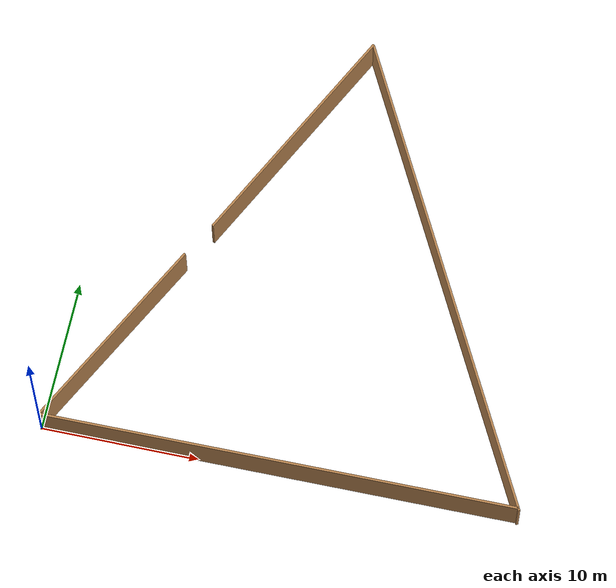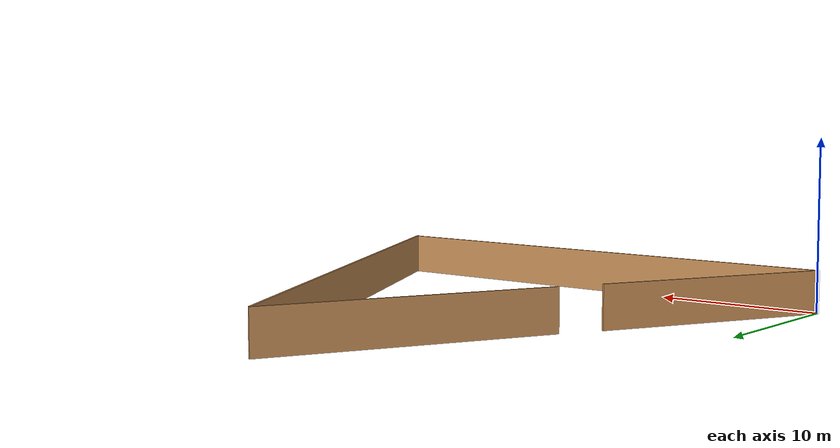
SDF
<?xml version='1.0'?>
<sdf version='1.5'>
  <model name='tr_layout_1'>
    <pose>15.0406 14.7092 0 0 -0 0</pose>
    <link name='Wall_0'>
      <collision name='Wall_0_Collision'>
        <geometry>
          <box>
            <size>30.15 0.15 2.5</size>
          </box>
        </geometry>
        <pose>0 0 1.25 0 -0 0</pose>
      </collision>
      <visual name='Wall_0_Visual'>
        <pose>0 0 1.25 0 -0 0</pose>
        <geometry>
          <box>
            <size>30.15 0.15 2.5</size>
          </box>
        </geometry>
        <material>
          <script>
            <uri>file://media/materials/scripts/gazebo.material</uri>
            <name>Gazebo/Wood</name>
          </script>
          <ambient>1 1 1 1</ambient>
        </material>
      </visual>
      <pose>-0.040638 -14.7092 0 0 -0 0</pose>
    </link>
    <link name='Wall_2'>
      <collision name='Wall_2_Collision'>
        <geometry>
          <box>
            <size>14.059 0.15 2.5</size>
          </box>
        </geometry>
        <pose>0 0 1.25 0 -0 0</pose>
      </collision>
      <visual name='Wall_2_Visual'>
        <pose>0 0 1.25 0 -0 0</pose>
        <geometry>
          <box>
            <size>14.059 0.15 2.5</size>
          </box>
        </geometry>
        <material>
          <script>
            <uri>file://media/materials/scripts/gazebo.material</uri>
            <name>Gazebo/Wood</name>
          </script>
          <ambient>1 1 1 1</ambient>
        </material>
      </visual>
      <pose>-11.8706 -8.51916 0 0 -0 1.0975</pose>
    </link>
    <link name='Wall_4'>
      <collision name='Wall_4_Collision'>
        <geometry>
          <box>
            <size>33.2446 0.15 2.5</size>
          </box>
        </geometry>
        <pose>0 0 1.25 0 -0 0</pose>
      </collision>
      <visual name='Wall_4_Visual'>
        <pose>0 0 1.25 0 -0 0</pose>
        <geometry>
          <box>
            <size>33.2446 0.15 2.5</size>
          </box>
        </geometry>
        <material>
          <script>
            <uri>file://media/materials/scripts/gazebo.material</uri>
            <name>Gazebo/Wood</name>
          </script>
          <ambient>1 1 1 1</ambient>
        </material>
      </visual>
      <pose>7.54073 -0.040527 0 0 0 -1.10039</pose>
    </link>
    <link name='Wall_6'>
      <collision name='Wall_6_Collision'>
        <geometry>
          <box>
            <size>16.6075 0.15 2.5</size>
          </box>
        </geometry>
        <pose>0 0 1.25 0 -0 0</pose>
      </collision>
      <visual name='Wall_6_Visual'>
        <pose>0 0 1.25 0 -0 0</pose>
        <geometry>
          <box>
            <size>16.6075 0.15 2.5</size>
          </box>
        </geometry>
        <material>
          <script>
            <uri>file://media/materials/scripts/gazebo.material</uri>
            <name>Gazebo/Wood</name>
          </script>
          <ambient>1 1 1 1</ambient>
        </material>
      </visual>
      <pose>-3.70064 7.42084 0 0 -0 1.10987</pose>
    </link>
    <static>1</static>
  </model>
</sdf>
